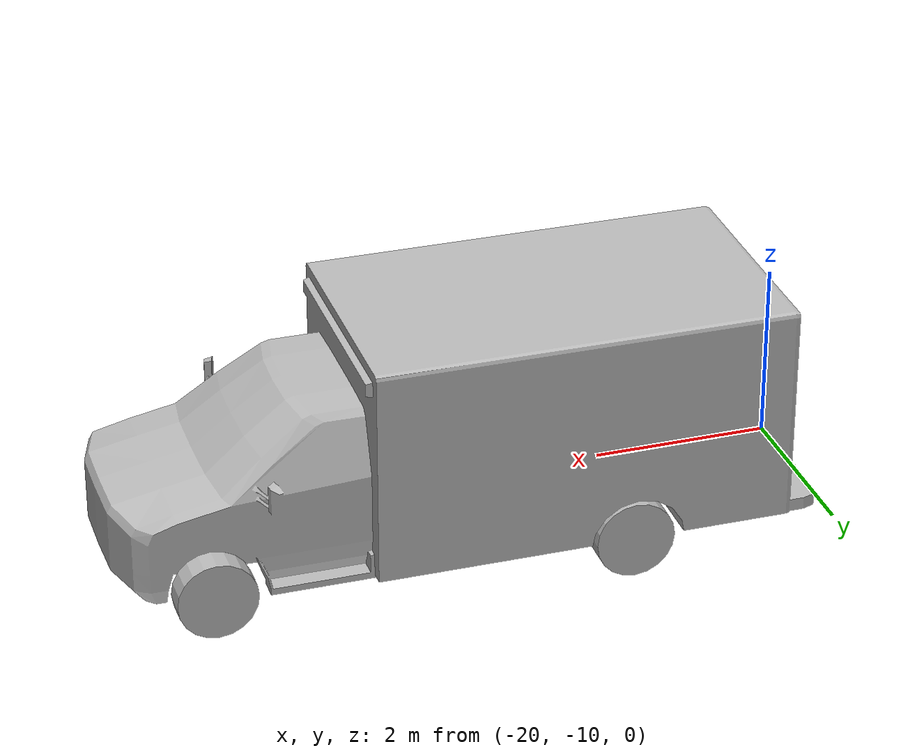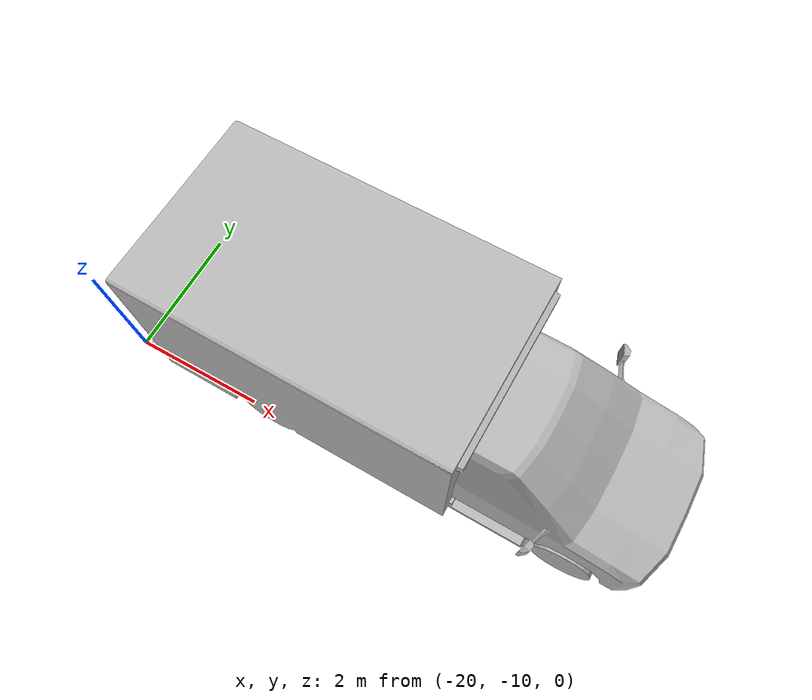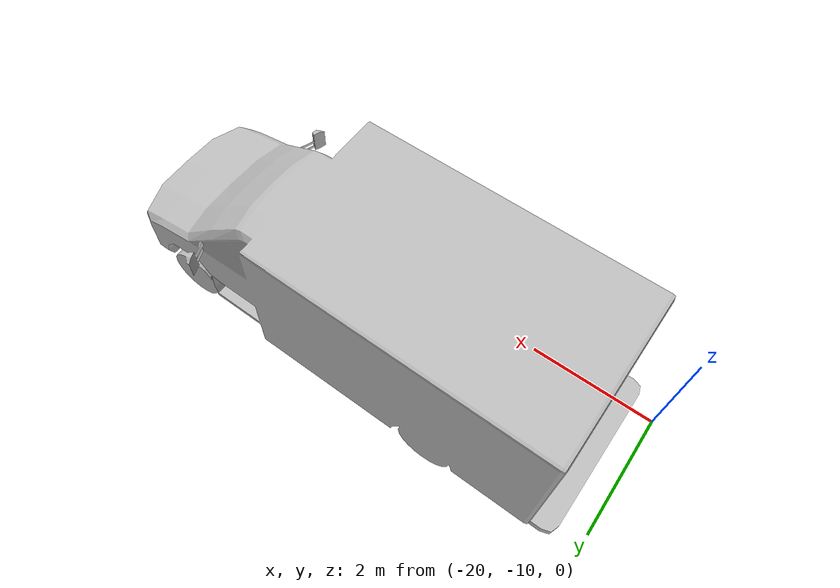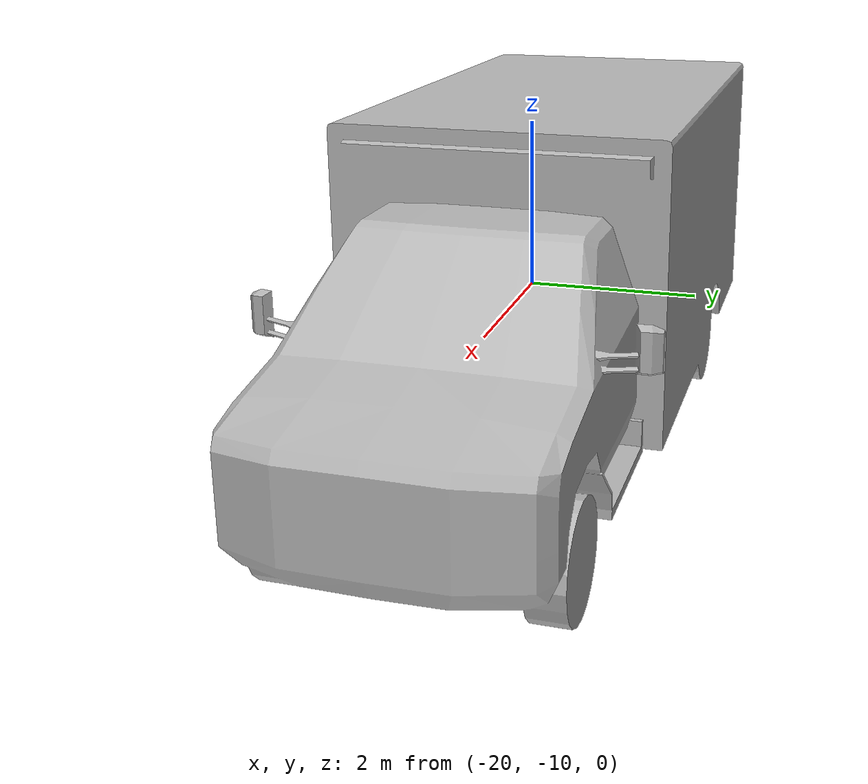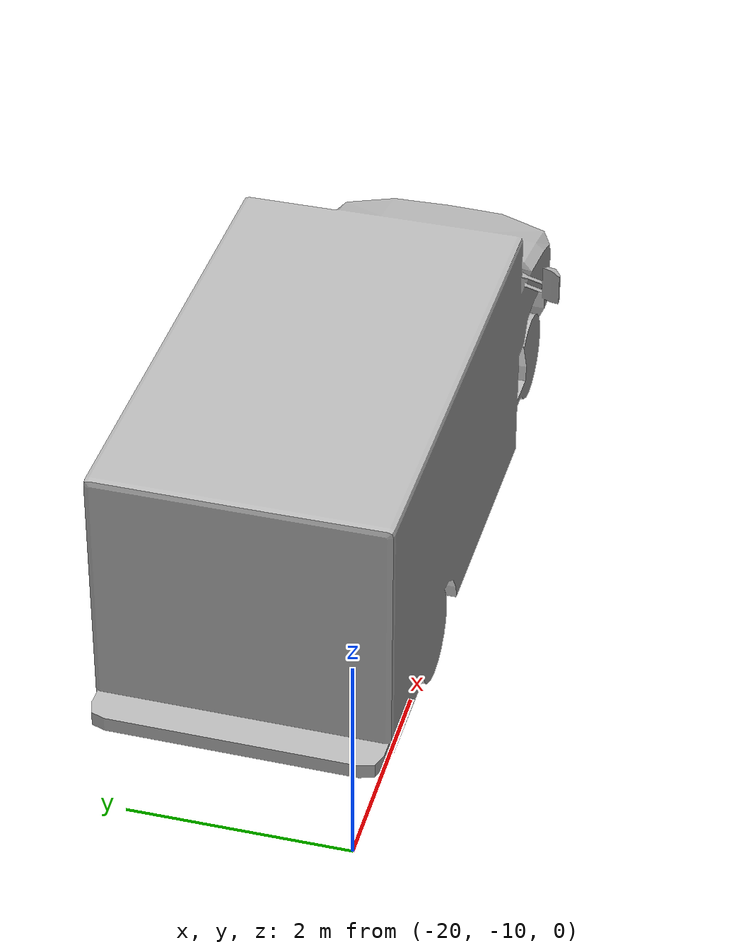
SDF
<sdf version="1.6">
 <world name="default">
  <model name="ambulance">
   <static>1</static>
   <link name="link">
    <collision name="collision">
     <geometry>
      <mesh><scale>0.0254 0.0254 0.0254</scale><uri>model://ambulance/meshes/ambulance.obj</uri></mesh>
     </geometry>
    </collision>
    <visual name="visual">
     <geometry>
      <mesh><scale>0.0254 0.0254 0.0254</scale><uri>model://ambulance/meshes/ambulance.obj</uri></mesh>
     </geometry>
    </visual>
   </link>
   <pose>-15.9191 -8.85985 0 0 -0 1.5601</pose>
  </model>
 </world>
</sdf>
